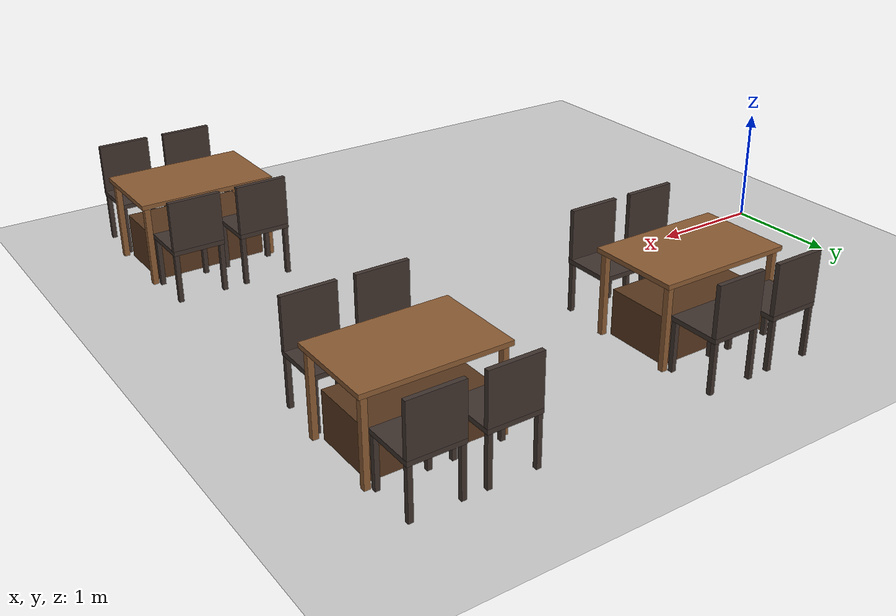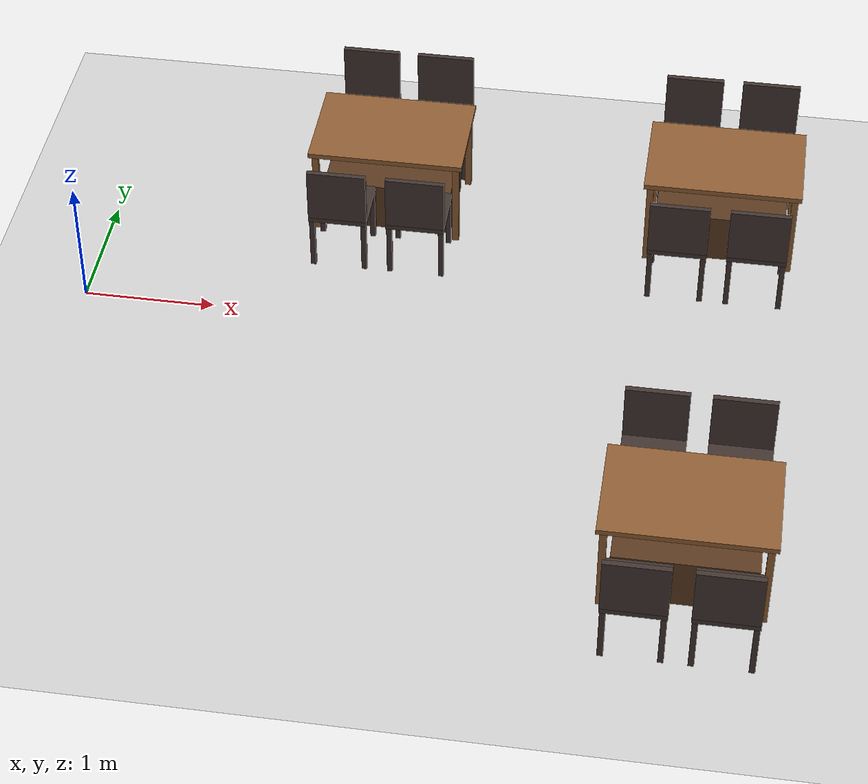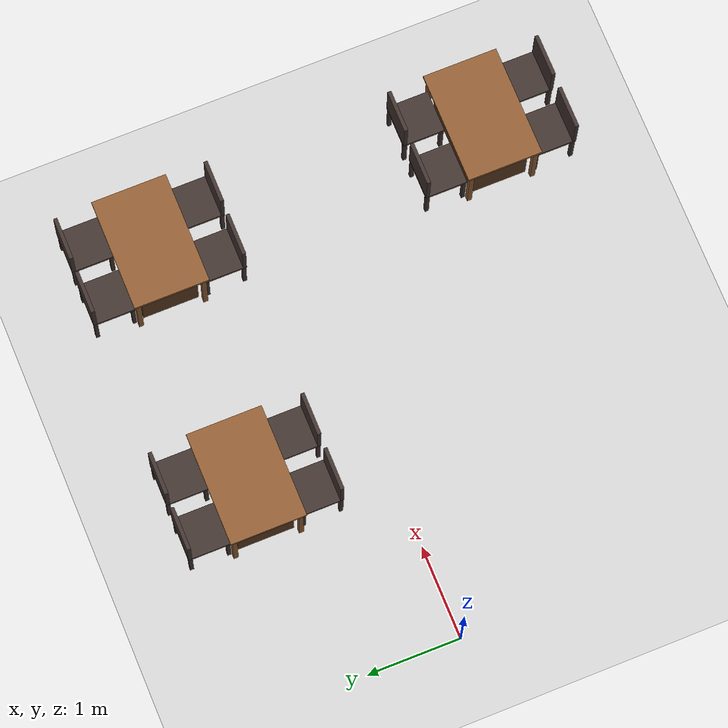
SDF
<sdf version="1.6">
 <world name="restaurant">
  <model name="ground_plane">
   <static>1</static>
   <link name="link">
    <collision name="collision">
     <geometry><plane><normal>0 0 1</normal><size>100 100</size></plane></geometry>
     <surface><friction><ode><mu>100</mu><mu2>50</mu2></ode></friction></surface>
    </collision>
    <visual name="visual">
     <cast_shadows>0</cast_shadows>
     <geometry><plane><normal>0 0 1</normal><size>100 100</size></plane></geometry>
     <material>
      <script><uri>file://media/materials/scripts/gazebo.material</uri><name>Gazebo/Grey</name></script>
     </material>
    </visual>
   </link>
  </model>
  <model name="table_4">
   <static>true</static>
   <pose>2.1640 1.4091 0 0 0 0</pose>
   <link name="link">
    <collision name="base_collision">
     <pose>0.0000 0.0000 0.2000 0 0 0</pose>
     <geometry><box><size>1.0000 0.6000 0.4000</size></box></geometry>
    </collision>
    <visual name="base_visual">
     <pose>0.0000 0.0000 0.2000 0 0 0</pose>
     <geometry><box><size>1.0000 0.6000 0.4000</size></box></geometry>
     <material>
      <ambient>0.35 0.22 0.12 1</ambient>
      <diffuse>0.35 0.22 0.12 1</diffuse>
      <specular>0.05 0.05 0.05 1</specular>
     </material>
    </visual>
    <collision name="top_collision">
     <pose>0.0000 0.0000 0.7300 0 0 0</pose>
     <geometry><box><size>1.2000 0.8000 0.0400</size></box></geometry>
    </collision>
    <visual name="top_visual">
     <pose>0.0000 0.0000 0.7300 0 0 0</pose>
     <geometry><box><size>1.2000 0.8000 0.0400</size></box></geometry>
     <material>
      <ambient>0.55 0.36 0.2 1</ambient>
      <diffuse>0.55 0.36 0.2 1</diffuse>
      <specular>0.05 0.05 0.05 1</specular>
     </material>
    </visual>
    <collision name="leg0_collision">
     <pose>0.5500 0.3500 0.3550 0 0 0</pose>
     <geometry><box><size>0.0500 0.0500 0.7100</size></box></geometry>
    </collision>
    <visual name="leg0_visual">
     <pose>0.5500 0.3500 0.3550 0 0 0</pose>
     <geometry><box><size>0.0500 0.0500 0.7100</size></box></geometry>
     <material>
      <ambient>0.55 0.36 0.2 1</ambient>
      <diffuse>0.55 0.36 0.2 1</diffuse>
      <specular>0.05 0.05 0.05 1</specular>
     </material>
    </visual>
    <collision name="leg1_collision">
     <pose>0.5500 -0.3500 0.3550 0 0 0</pose>
     <geometry><box><size>0.0500 0.0500 0.7100</size></box></geometry>
    </collision>
    <visual name="leg1_visual">
     <pose>0.5500 -0.3500 0.3550 0 0 0</pose>
     <geometry><box><size>0.0500 0.0500 0.7100</size></box></geometry>
     <material>
      <ambient>0.55 0.36 0.2 1</ambient>
      <diffuse>0.55 0.36 0.2 1</diffuse>
      <specular>0.05 0.05 0.05 1</specular>
     </material>
    </visual>
    <collision name="leg2_collision">
     <pose>-0.5500 0.3500 0.3550 0 0 0</pose>
     <geometry><box><size>0.0500 0.0500 0.7100</size></box></geometry>
    </collision>
    <visual name="leg2_visual">
     <pose>-0.5500 0.3500 0.3550 0 0 0</pose>
     <geometry><box><size>0.0500 0.0500 0.7100</size></box></geometry>
     <material>
      <ambient>0.55 0.36 0.2 1</ambient>
      <diffuse>0.55 0.36 0.2 1</diffuse>
      <specular>0.05 0.05 0.05 1</specular>
     </material>
    </visual>
    <collision name="leg3_collision">
     <pose>-0.5500 -0.3500 0.3550 0 0 0</pose>
     <geometry><box><size>0.0500 0.0500 0.7100</size></box></geometry>
    </collision>
    <visual name="leg3_visual">
     <pose>-0.5500 -0.3500 0.3550 0 0 0</pose>
     <geometry><box><size>0.0500 0.0500 0.7100</size></box></geometry>
     <material>
      <ambient>0.55 0.36 0.2 1</ambient>
      <diffuse>0.55 0.36 0.2 1</diffuse>
      <specular>0.05 0.05 0.05 1</specular>
     </material>
    </visual>
    <collision name="chair0_seat_collision">
     <pose>-0.3000 0.6000 0.4500 0 0 0</pose>
     <geometry><box><size>0.4500 0.4500 0.0400</size></box></geometry>
    </collision>
    <visual name="chair0_seat_visual">
     <pose>-0.3000 0.6000 0.4500 0 0 0</pose>
     <geometry><box><size>0.4500 0.4500 0.0400</size></box></geometry>
     <material>
      <ambient>0.25 0.2 0.18 1</ambient>
      <diffuse>0.25 0.2 0.18 1</diffuse>
      <specular>0.05 0.05 0.05 1</specular>
     </material>
    </visual>
    <collision name="chair0_leg0_collision">
     <pose>-0.1000 0.8000 0.2150 0 0 0</pose>
     <geometry><box><size>0.0400 0.0400 0.4300</size></box></geometry>
    </collision>
    <visual name="chair0_leg0_visual">
     <pose>-0.1000 0.8000 0.2150 0 0 0</pose>
     <geometry><box><size>0.0400 0.0400 0.4300</size></box></geometry>
     <material>
      <ambient>0.25 0.2 0.18 1</ambient>
      <diffuse>0.25 0.2 0.18 1</diffuse>
      <specular>0.05 0.05 0.05 1</specular>
     </material>
    </visual>
    <collision name="chair0_leg1_collision">
     <pose>-0.1000 0.4000 0.2150 0 0 0</pose>
     <geometry><box><size>0.0400 0.0400 0.4300</size></box></geometry>
    </collision>
    <visual name="chair0_leg1_visual">
     <pose>-0.1000 0.4000 0.2150 0 0 0</pose>
     <geometry><box><size>0.0400 0.0400 0.4300</size></box></geometry>
     <material>
      <ambient>0.25 0.2 0.18 1</ambient>
      <diffuse>0.25 0.2 0.18 1</diffuse>
      <specular>0.05 0.05 0.05 1</specular>
     </material>
    </visual>
    <collision name="chair0_leg2_collision">
     <pose>-0.5000 0.8000 0.2150 0 0 0</pose>
     <geometry><box><size>0.0400 0.0400 0.4300</size></box></geometry>
    </collision>
    <visual name="chair0_leg2_visual">
     <pose>-0.5000 0.8000 0.2150 0 0 0</pose>
     <geometry><box><size>0.0400 0.0400 0.4300</size></box></geometry>
     <material>
      <ambient>0.25 0.2 0.18 1</ambient>
      <diffuse>0.25 0.2 0.18 1</diffuse>
      <specular>0.05 0.05 0.05 1</specular>
     </material>
    </visual>
    <collision name="chair0_leg3_collision">
     <pose>-0.5000 0.4000 0.2150 0 0 0</pose>
     <geometry><box><size>0.0400 0.0400 0.4300</size></box></geometry>
    </collision>
    <visual name="chair0_leg3_visual">
     <pose>-0.5000 0.4000 0.2150 0 0 0</pose>
     <geometry><box><size>0.0400 0.0400 0.4300</size></box></geometry>
     <material>
      <ambient>0.25 0.2 0.18 1</ambient>
      <diffuse>0.25 0.2 0.18 1</diffuse>
      <specular>0.05 0.05 0.05 1</specular>
     </material>
    </visual>
    <collision name="chair0_back_collision">
     <pose>-0.3000 0.8050 0.6850 0 0 0</pose>
     <geometry><box><size>0.4500 0.0400 0.4300</size></box></geometry>
    </collision>
    <visual name="chair0_back_visual">
     <pose>-0.3000 0.8050 0.6850 0 0 0</pose>
     <geometry><box><size>0.4500 0.0400 0.4300</size></box></geometry>
     <material>
      <ambient>0.25 0.2 0.18 1</ambient>
      <diffuse>0.25 0.2 0.18 1</diffuse>
      <specular>0.05 0.05 0.05 1</specular>
     </material>
    </visual>
    <collision name="chair1_seat_collision">
     <pose>-0.3000 -0.6000 0.4500 0 0 0</pose>
     <geometry><box><size>0.4500 0.4500 0.0400</size></box></geometry>
    </collision>
    <visual name="chair1_seat_visual">
     <pose>-0.3000 -0.6000 0.4500 0 0 0</pose>
     <geometry><box><size>0.4500 0.4500 0.0400</size></box></geometry>
     <material>
      <ambient>0.25 0.2 0.18 1</ambient>
      <diffuse>0.25 0.2 0.18 1</diffuse>
      <specular>0.05 0.05 0.05 1</specular>
     </material>
    </visual>
    <collision name="chair1_leg0_collision">
     <pose>-0.1000 -0.4000 0.2150 0 0 0</pose>
     <geometry><box><size>0.0400 0.0400 0.4300</size></box></geometry>
    </collision>
    <visual name="chair1_leg0_visual">
     <pose>-0.1000 -0.4000 0.2150 0 0 0</pose>
     <geometry><box><size>0.0400 0.0400 0.4300</size></box></geometry>
     <material>
      <ambient>0.25 0.2 0.18 1</ambient>
      <diffuse>0.25 0.2 0.18 1</diffuse>
      <specular>0.05 0.05 0.05 1</specular>
     </material>
    </visual>
    <collision name="chair1_leg1_collision">
     <pose>-0.1000 -0.8000 0.2150 0 0 0</pose>
     <geometry><box><size>0.0400 0.0400 0.4300</size></box></geometry>
    </collision>
    <visual name="chair1_leg1_visual">
     <pose>-0.1000 -0.8000 0.2150 0 0 0</pose>
     <geometry><box><size>0.0400 0.0400 0.4300</size></box></geometry>
     <material>
      <ambient>0.25 0.2 0.18 1</ambient>
      <diffuse>0.25 0.2 0.18 1</diffuse>
      <specular>0.05 0.05 0.05 1</specular>
     </material>
    </visual>
    <collision name="chair1_leg2_collision">
     <pose>-0.5000 -0.4000 0.2150 0 0 0</pose>
     <geometry><box><size>0.0400 0.0400 0.4300</size></box></geometry>
    </collision>
    <visual name="chair1_leg2_visual">
     <pose>-0.5000 -0.4000 0.2150 0 0 0</pose>
     <geometry><box><size>0.0400 0.0400 0.4300</size></box></geometry>
     <material>
      <ambient>0.25 0.2 0.18 1</ambient>
      <diffuse>0.25 0.2 0.18 1</diffuse>
      <specular>0.05 0.05 0.05 1</specular>
     </material>
    </visual>
    <collision name="chair1_leg3_collision">
     <pose>-0.5000 -0.8000 0.2150 0 0 0</pose>
     <geometry><box><size>0.0400 0.0400 0.4300</size></box></geometry>
    </collision>
    <visual name="chair1_leg3_visual">
     <pose>-0.5000 -0.8000 0.2150 0 0 0</pose>
     <geometry><box><size>0.0400 0.0400 0.4300</size></box></geometry>
     <material>
      <ambient>0.25 0.2 0.18 1</ambient>
      <diffuse>0.25 0.2 0.18 1</diffuse>
      <specular>0.05 0.05 0.05 1</specular>
     </material>
    </visual>
    <collision name="chair1_back_collision">
     <pose>-0.3000 -0.8050 0.6850 0 0 0</pose>
     <geometry><box><size>0.4500 0.0400 0.4300</size></box></geometry>
    </collision>
    <visual name="chair1_back_visual">
     <pose>-0.3000 -0.8050 0.6850 0 0 0</pose>
     <geometry><box><size>0.4500 0.0400 0.4300</size></box></geometry>
     <material>
      <ambient>0.25 0.2 0.18 1</ambient>
      <diffuse>0.25 0.2 0.18 1</diffuse>
      <specular>0.05 0.05 0.05 1</specular>
     </material>
    </visual>
    <collision name="chair2_seat_collision">
     <pose>0.3000 0.6000 0.4500 0 0 0</pose>
     <geometry><box><size>0.4500 0.4500 0.0400</size></box></geometry>
    </collision>
    <visual name="chair2_seat_visual">
     <pose>0.3000 0.6000 0.4500 0 0 0</pose>
     <geometry><box><size>0.4500 0.4500 0.0400</size></box></geometry>
     <material>
      <ambient>0.25 0.2 0.18 1</ambient>
      <diffuse>0.25 0.2 0.18 1</diffuse>
      <specular>0.05 0.05 0.05 1</specular>
     </material>
    </visual>
    <collision name="chair2_leg0_collision">
     <pose>0.5000 0.8000 0.2150 0 0 0</pose>
     <geometry><box><size>0.0400 0.0400 0.4300</size></box></geometry>
    </collision>
    <visual name="chair2_leg0_visual">
     <pose>0.5000 0.8000 0.2150 0 0 0</pose>
     <geometry><box><size>0.0400 0.0400 0.4300</size></box></geometry>
     <material>
      <ambient>0.25 0.2 0.18 1</ambient>
      <diffuse>0.25 0.2 0.18 1</diffuse>
      <specular>0.05 0.05 0.05 1</specular>
     </material>
    </visual>
    <collision name="chair2_leg1_collision">
     <pose>0.5000 0.4000 0.2150 0 0 0</pose>
     <geometry><box><size>0.0400 0.0400 0.4300</size></box></geometry>
    </collision>
    <visual name="chair2_leg1_visual">
     <pose>0.5000 0.4000 0.2150 0 0 0</pose>
     <geometry><box><size>0.0400 0.0400 0.4300</size></box></geometry>
     <material>
      <ambient>0.25 0.2 0.18 1</ambient>
      <diffuse>0.25 0.2 0.18 1</diffuse>
      <specular>0.05 0.05 0.05 1</specular>
     </material>
    </visual>
    <collision name="chair2_leg2_collision">
     <pose>0.1000 0.8000 0.2150 0 0 0</pose>
     <geometry><box><size>0.0400 0.0400 0.4300</size></box></geometry>
    </collision>
    <visual name="chair2_leg2_visual">
     <pose>0.1000 0.8000 0.2150 0 0 0</pose>
     <geometry><box><size>0.0400 0.0400 0.4300</size></box></geometry>
     <material>
      <ambient>0.25 0.2 0.18 1</ambient>
      <diffuse>0.25 0.2 0.18 1</diffuse>
      <specular>0.05 0.05 0.05 1</specular>
     </material>
    </visual>
    <collision name="chair2_leg3_collision">
     <pose>0.1000 0.4000 0.2150 0 0 0</pose>
     <geometry><box><size>0.0400 0.0400 0.4300</size></box></geometry>
    </collision>
    <visual name="chair2_leg3_visual">
     <pose>0.1000 0.4000 0.2150 0 0 0</pose>
     <geometry><box><size>0.0400 0.0400 0.4300</size></box></geometry>
     <material>
      <ambient>0.25 0.2 0.18 1</ambient>
      <diffuse>0.25 0.2 0.18 1</diffuse>
      <specular>0.05 0.05 0.05 1</specular>
     </material>
    </visual>
    <collision name="chair2_back_collision">
     <pose>0.3000 0.8050 0.6850 0 0 0</pose>
     <geometry><box><size>0.4500 0.0400 0.4300</size></box></geometry>
    </collision>
    <visual name="chair2_back_visual">
     <pose>0.3000 0.8050 0.6850 0 0 0</pose>
     <geometry><box><size>0.4500 0.0400 0.4300</size></box></geometry>
     <material>
      <ambient>0.25 0.2 0.18 1</ambient>
      <diffuse>0.25 0.2 0.18 1</diffuse>
      <specular>0.05 0.05 0.05 1</specular>
     </material>
    </visual>
    <collision name="chair3_seat_collision">
     <pose>0.3000 -0.6000 0.4500 0 0 0</pose>
     <geometry><box><size>0.4500 0.4500 0.0400</size></box></geometry>
    </collision>
    <visual name="chair3_seat_visual">
     <pose>0.3000 -0.6000 0.4500 0 0 0</pose>
     <geometry><box><size>0.4500 0.4500 0.0400</size></box></geometry>
     <material>
      <ambient>0.25 0.2 0.18 1</ambient>
      <diffuse>0.25 0.2 0.18 1</diffuse>
      <specular>0.05 0.05 0.05 1</specular>
     </material>
    </visual>
    <collision name="chair3_leg0_collision">
     <pose>0.5000 -0.4000 0.2150 0 0 0</pose>
     <geometry><box><size>0.0400 0.0400 0.4300</size></box></geometry>
    </collision>
    <visual name="chair3_leg0_visual">
     <pose>0.5000 -0.4000 0.2150 0 0 0</pose>
     <geometry><box><size>0.0400 0.0400 0.4300</size></box></geometry>
     <material>
      <ambient>0.25 0.2 0.18 1</ambient>
      <diffuse>0.25 0.2 0.18 1</diffuse>
      <specular>0.05 0.05 0.05 1</specular>
     </material>
    </visual>
    <collision name="chair3_leg1_collision">
     <pose>0.5000 -0.8000 0.2150 0 0 0</pose>
     <geometry><box><size>0.0400 0.0400 0.4300</size></box></geometry>
    </collision>
    <visual name="chair3_leg1_visual">
     <pose>0.5000 -0.8000 0.2150 0 0 0</pose>
     <geometry><box><size>0.0400 0.0400 0.4300</size></box></geometry>
     <material>
      <ambient>0.25 0.2 0.18 1</ambient>
      <diffuse>0.25 0.2 0.18 1</diffuse>
      <specular>0.05 0.05 0.05 1</specular>
     </material>
    </visual>
    <collision name="chair3_leg2_collision">
     <pose>0.1000 -0.4000 0.2150 0 0 0</pose>
     <geometry><box><size>0.0400 0.0400 0.4300</size></box></geometry>
    </collision>
    <visual name="chair3_leg2_visual">
     <pose>0.1000 -0.4000 0.2150 0 0 0</pose>
     <geometry><box><size>0.0400 0.0400 0.4300</size></box></geometry>
     <material>
      <ambient>0.25 0.2 0.18 1</ambient>
      <diffuse>0.25 0.2 0.18 1</diffuse>
      <specular>0.05 0.05 0.05 1</specular>
     </material>
    </visual>
    <collision name="chair3_leg3_collision">
     <pose>0.1000 -0.8000 0.2150 0 0 0</pose>
     <geometry><box><size>0.0400 0.0400 0.4300</size></box></geometry>
    </collision>
    <visual name="chair3_leg3_visual">
     <pose>0.1000 -0.8000 0.2150 0 0 0</pose>
     <geometry><box><size>0.0400 0.0400 0.4300</size></box></geometry>
     <material>
      <ambient>0.25 0.2 0.18 1</ambient>
      <diffuse>0.25 0.2 0.18 1</diffuse>
      <specular>0.05 0.05 0.05 1</specular>
     </material>
    </visual>
    <collision name="chair3_back_collision">
     <pose>0.3000 -0.8050 0.6850 0 0 0</pose>
     <geometry><box><size>0.4500 0.0400 0.4300</size></box></geometry>
    </collision>
    <visual name="chair3_back_visual">
     <pose>0.3000 -0.8050 0.6850 0 0 0</pose>
     <geometry><box><size>0.4500 0.0400 0.4300</size></box></geometry>
     <material>
      <ambient>0.25 0.2 0.18 1</ambient>
      <diffuse>0.25 0.2 0.18 1</diffuse>
      <specular>0.05 0.05 0.05 1</specular>
     </material>
    </visual>
   </link>
  </model>
  <model name="table_5">
   <static>true</static>
   <pose>4.7640 1.4091 0 0 0 0</pose>
   <link name="link">
    <collision name="base_collision">
     <pose>0.0000 0.0000 0.2000 0 0 0</pose>
     <geometry><box><size>1.0000 0.6000 0.4000</size></box></geometry>
    </collision>
    <visual name="base_visual">
     <pose>0.0000 0.0000 0.2000 0 0 0</pose>
     <geometry><box><size>1.0000 0.6000 0.4000</size></box></geometry>
     <material>
      <ambient>0.35 0.22 0.12 1</ambient>
      <diffuse>0.35 0.22 0.12 1</diffuse>
      <specular>0.05 0.05 0.05 1</specular>
     </material>
    </visual>
    <collision name="top_collision">
     <pose>0.0000 0.0000 0.7300 0 0 0</pose>
     <geometry><box><size>1.2000 0.8000 0.0400</size></box></geometry>
    </collision>
    <visual name="top_visual">
     <pose>0.0000 0.0000 0.7300 0 0 0</pose>
     <geometry><box><size>1.2000 0.8000 0.0400</size></box></geometry>
     <material>
      <ambient>0.55 0.36 0.2 1</ambient>
      <diffuse>0.55 0.36 0.2 1</diffuse>
      <specular>0.05 0.05 0.05 1</specular>
     </material>
    </visual>
    <collision name="leg0_collision">
     <pose>0.5500 0.3500 0.3550 0 0 0</pose>
     <geometry><box><size>0.0500 0.0500 0.7100</size></box></geometry>
    </collision>
    <visual name="leg0_visual">
     <pose>0.5500 0.3500 0.3550 0 0 0</pose>
     <geometry><box><size>0.0500 0.0500 0.7100</size></box></geometry>
     <material>
      <ambient>0.55 0.36 0.2 1</ambient>
      <diffuse>0.55 0.36 0.2 1</diffuse>
      <specular>0.05 0.05 0.05 1</specular>
     </material>
    </visual>
    <collision name="leg1_collision">
     <pose>0.5500 -0.3500 0.3550 0 0 0</pose>
     <geometry><box><size>0.0500 0.0500 0.7100</size></box></geometry>
    </collision>
    <visual name="leg1_visual">
     <pose>0.5500 -0.3500 0.3550 0 0 0</pose>
     <geometry><box><size>0.0500 0.0500 0.7100</size></box></geometry>
     <material>
      <ambient>0.55 0.36 0.2 1</ambient>
      <diffuse>0.55 0.36 0.2 1</diffuse>
      <specular>0.05 0.05 0.05 1</specular>
     </material>
    </visual>
    <collision name="leg2_collision">
     <pose>-0.5500 0.3500 0.3550 0 0 0</pose>
     <geometry><box><size>0.0500 0.0500 0.7100</size></box></geometry>
    </collision>
    <visual name="leg2_visual">
     <pose>-0.5500 0.3500 0.3550 0 0 0</pose>
     <geometry><box><size>0.0500 0.0500 0.7100</size></box></geometry>
     <material>
      <ambient>0.55 0.36 0.2 1</ambient>
      <diffuse>0.55 0.36 0.2 1</diffuse>
      <specular>0.05 0.05 0.05 1</specular>
     </material>
    </visual>
    <collision name="leg3_collision">
     <pose>-0.5500 -0.3500 0.3550 0 0 0</pose>
     <geometry><box><size>0.0500 0.0500 0.7100</size></box></geometry>
    </collision>
    <visual name="leg3_visual">
     <pose>-0.5500 -0.3500 0.3550 0 0 0</pose>
     <geometry><box><size>0.0500 0.0500 0.7100</size></box></geometry>
     <material>
      <ambient>0.55 0.36 0.2 1</ambient>
      <diffuse>0.55 0.36 0.2 1</diffuse>
      <specular>0.05 0.05 0.05 1</specular>
     </material>
    </visual>
    <collision name="chair0_seat_collision">
     <pose>-0.3000 0.6000 0.4500 0 0 0</pose>
     <geometry><box><size>0.4500 0.4500 0.0400</size></box></geometry>
    </collision>
    <visual name="chair0_seat_visual">
     <pose>-0.3000 0.6000 0.4500 0 0 0</pose>
     <geometry><box><size>0.4500 0.4500 0.0400</size></box></geometry>
     <material>
      <ambient>0.25 0.2 0.18 1</ambient>
      <diffuse>0.25 0.2 0.18 1</diffuse>
      <specular>0.05 0.05 0.05 1</specular>
     </material>
    </visual>
    <collision name="chair0_leg0_collision">
     <pose>-0.1000 0.8000 0.2150 0 0 0</pose>
     <geometry><box><size>0.0400 0.0400 0.4300</size></box></geometry>
    </collision>
    <visual name="chair0_leg0_visual">
     <pose>-0.1000 0.8000 0.2150 0 0 0</pose>
     <geometry><box><size>0.0400 0.0400 0.4300</size></box></geometry>
     <material>
      <ambient>0.25 0.2 0.18 1</ambient>
      <diffuse>0.25 0.2 0.18 1</diffuse>
      <specular>0.05 0.05 0.05 1</specular>
     </material>
    </visual>
    <collision name="chair0_leg1_collision">
     <pose>-0.1000 0.4000 0.2150 0 0 0</pose>
     <geometry><box><size>0.0400 0.0400 0.4300</size></box></geometry>
    </collision>
    <visual name="chair0_leg1_visual">
     <pose>-0.1000 0.4000 0.2150 0 0 0</pose>
     <geometry><box><size>0.0400 0.0400 0.4300</size></box></geometry>
     <material>
      <ambient>0.25 0.2 0.18 1</ambient>
      <diffuse>0.25 0.2 0.18 1</diffuse>
      <specular>0.05 0.05 0.05 1</specular>
     </material>
    </visual>
    <collision name="chair0_leg2_collision">
     <pose>-0.5000 0.8000 0.2150 0 0 0</pose>
     <geometry><box><size>0.0400 0.0400 0.4300</size></box></geometry>
    </collision>
    <visual name="chair0_leg2_visual">
     <pose>-0.5000 0.8000 0.2150 0 0 0</pose>
     <geometry><box><size>0.0400 0.0400 0.4300</size></box></geometry>
     <material>
      <ambient>0.25 0.2 0.18 1</ambient>
      <diffuse>0.25 0.2 0.18 1</diffuse>
      <specular>0.05 0.05 0.05 1</specular>
     </material>
    </visual>
    <collision name="chair0_leg3_collision">
     <pose>-0.5000 0.4000 0.2150 0 0 0</pose>
     <geometry><box><size>0.0400 0.0400 0.4300</size></box></geometry>
    </collision>
    <visual name="chair0_leg3_visual">
     <pose>-0.5000 0.4000 0.2150 0 0 0</pose>
     <geometry><box><size>0.0400 0.0400 0.4300</size></box></geometry>
     <material>
      <ambient>0.25 0.2 0.18 1</ambient>
      <diffuse>0.25 0.2 0.18 1</diffuse>
      <specular>0.05 0.05 0.05 1</specular>
     </material>
    </visual>
    <collision name="chair0_back_collision">
     <pose>-0.3000 0.8050 0.6850 0 0 0</pose>
     <geometry><box><size>0.4500 0.0400 0.4300</size></box></geometry>
    </collision>
    <visual name="chair0_back_visual">
     <pose>-0.3000 0.8050 0.6850 0 0 0</pose>
     <geometry><box><size>0.4500 0.0400 0.4300</size></box></geometry>
     <material>
      <ambient>0.25 0.2 0.18 1</ambient>
      <diffuse>0.25 0.2 0.18 1</diffuse>
      <specular>0.05 0.05 0.05 1</specular>
     </material>
    </visual>
    <collision name="chair1_seat_collision">
     <pose>-0.3000 -0.6000 0.4500 0 0 0</pose>
     <geometry><box><size>0.4500 0.4500 0.0400</size></box></geometry>
    </collision>
    <visual name="chair1_seat_visual">
     <pose>-0.3000 -0.6000 0.4500 0 0 0</pose>
     <geometry><box><size>0.4500 0.4500 0.0400</size></box></geometry>
     <material>
      <ambient>0.25 0.2 0.18 1</ambient>
      <diffuse>0.25 0.2 0.18 1</diffuse>
      <specular>0.05 0.05 0.05 1</specular>
     </material>
    </visual>
    <collision name="chair1_leg0_collision">
     <pose>-0.1000 -0.4000 0.2150 0 0 0</pose>
     <geometry><box><size>0.0400 0.0400 0.4300</size></box></geometry>
    </collision>
    <visual name="chair1_leg0_visual">
     <pose>-0.1000 -0.4000 0.2150 0 0 0</pose>
     <geometry><box><size>0.0400 0.0400 0.4300</size></box></geometry>
     <material>
      <ambient>0.25 0.2 0.18 1</ambient>
      <diffuse>0.25 0.2 0.18 1</diffuse>
      <specular>0.05 0.05 0.05 1</specular>
     </material>
    </visual>
    <collision name="chair1_leg1_collision">
     <pose>-0.1000 -0.8000 0.2150 0 0 0</pose>
     <geometry><box><size>0.0400 0.0400 0.4300</size></box></geometry>
    </collision>
    <visual name="chair1_leg1_visual">
     <pose>-0.1000 -0.8000 0.2150 0 0 0</pose>
     <geometry><box><size>0.0400 0.0400 0.4300</size></box></geometry>
     <material>
      <ambient>0.25 0.2 0.18 1</ambient>
      <diffuse>0.25 0.2 0.18 1</diffuse>
      <specular>0.05 0.05 0.05 1</specular>
     </material>
    </visual>
    <collision name="chair1_leg2_collision">
     <pose>-0.5000 -0.4000 0.2150 0 0 0</pose>
     <geometry><box><size>0.0400 0.0400 0.4300</size></box></geometry>
    </collision>
    <visual name="chair1_leg2_visual">
     <pose>-0.5000 -0.4000 0.2150 0 0 0</pose>
     <geometry><box><size>0.0400 0.0400 0.4300</size></box></geometry>
     <material>
      <ambient>0.25 0.2 0.18 1</ambient>
      <diffuse>0.25 0.2 0.18 1</diffuse>
      <specular>0.05 0.05 0.05 1</specular>
     </material>
    </visual>
    <collision name="chair1_leg3_collision">
     <pose>-0.5000 -0.8000 0.2150 0 0 0</pose>
     <geometry><box><size>0.0400 0.0400 0.4300</size></box></geometry>
    </collision>
    <visual name="chair1_leg3_visual">
     <pose>-0.5000 -0.8000 0.2150 0 0 0</pose>
     <geometry><box><size>0.0400 0.0400 0.4300</size></box></geometry>
     <material>
      <ambient>0.25 0.2 0.18 1</ambient>
      <diffuse>0.25 0.2 0.18 1</diffuse>
      <specular>0.05 0.05 0.05 1</specular>
     </material>
    </visual>
    <collision name="chair1_back_collision">
     <pose>-0.3000 -0.8050 0.6850 0 0 0</pose>
     <geometry><box><size>0.4500 0.0400 0.4300</size></box></geometry>
    </collision>
    <visual name="chair1_back_visual">
     <pose>-0.3000 -0.8050 0.6850 0 0 0</pose>
     <geometry><box><size>0.4500 0.0400 0.4300</size></box></geometry>
     <material>
      <ambient>0.25 0.2 0.18 1</ambient>
      <diffuse>0.25 0.2 0.18 1</diffuse>
      <specular>0.05 0.05 0.05 1</specular>
     </material>
    </visual>
    <collision name="chair2_seat_collision">
     <pose>0.3000 0.6000 0.4500 0 0 0</pose>
     <geometry><box><size>0.4500 0.4500 0.0400</size></box></geometry>
    </collision>
    <visual name="chair2_seat_visual">
     <pose>0.3000 0.6000 0.4500 0 0 0</pose>
     <geometry><box><size>0.4500 0.4500 0.0400</size></box></geometry>
     <material>
      <ambient>0.25 0.2 0.18 1</ambient>
      <diffuse>0.25 0.2 0.18 1</diffuse>
      <specular>0.05 0.05 0.05 1</specular>
     </material>
    </visual>
    <collision name="chair2_leg0_collision">
     <pose>0.5000 0.8000 0.2150 0 0 0</pose>
     <geometry><box><size>0.0400 0.0400 0.4300</size></box></geometry>
    </collision>
    <visual name="chair2_leg0_visual">
     <pose>0.5000 0.8000 0.2150 0 0 0</pose>
     <geometry><box><size>0.0400 0.0400 0.4300</size></box></geometry>
     <material>
      <ambient>0.25 0.2 0.18 1</ambient>
      <diffuse>0.25 0.2 0.18 1</diffuse>
      <specular>0.05 0.05 0.05 1</specular>
     </material>
    </visual>
    <collision name="chair2_leg1_collision">
     <pose>0.5000 0.4000 0.2150 0 0 0</pose>
     <geometry><box><size>0.0400 0.0400 0.4300</size></box></geometry>
    </collision>
    <visual name="chair2_leg1_visual">
     <pose>0.5000 0.4000 0.2150 0 0 0</pose>
     <geometry><box><size>0.0400 0.0400 0.4300</size></box></geometry>
     <material>
      <ambient>0.25 0.2 0.18 1</ambient>
      <diffuse>0.25 0.2 0.18 1</diffuse>
      <specular>0.05 0.05 0.05 1</specular>
     </material>
    </visual>
    <collision name="chair2_leg2_collision">
     <pose>0.1000 0.8000 0.2150 0 0 0</pose>
     <geometry><box><size>0.0400 0.0400 0.4300</size></box></geometry>
    </collision>
    <visual name="chair2_leg2_visual">
     <pose>0.1000 0.8000 0.2150 0 0 0</pose>
     <geometry><box><size>0.0400 0.0400 0.4300</size></box></geometry>
     <material>
      <ambient>0.25 0.2 0.18 1</ambient>
      <diffuse>0.25 0.2 0.18 1</diffuse>
      <specular>0.05 0.05 0.05 1</specular>
     </material>
    </visual>
    <collision name="chair2_leg3_collision">
     <pose>0.1000 0.4000 0.2150 0 0 0</pose>
     <geometry><box><size>0.0400 0.0400 0.4300</size></box></geometry>
    </collision>
    <visual name="chair2_leg3_visual">
     <pose>0.1000 0.4000 0.2150 0 0 0</pose>
     <geometry><box><size>0.0400 0.0400 0.4300</size></box></geometry>
     <material>
      <ambient>0.25 0.2 0.18 1</ambient>
      <diffuse>0.25 0.2 0.18 1</diffuse>
      <specular>0.05 0.05 0.05 1</specular>
     </material>
    </visual>
    <collision name="chair2_back_collision">
     <pose>0.3000 0.8050 0.6850 0 0 0</pose>
     <geometry><box><size>0.4500 0.0400 0.4300</size></box></geometry>
    </collision>
    <visual name="chair2_back_visual">
     <pose>0.3000 0.8050 0.6850 0 0 0</pose>
     <geometry><box><size>0.4500 0.0400 0.4300</size></box></geometry>
     <material>
      <ambient>0.25 0.2 0.18 1</ambient>
      <diffuse>0.25 0.2 0.18 1</diffuse>
      <specular>0.05 0.05 0.05 1</specular>
     </material>
    </visual>
    <collision name="chair3_seat_collision">
     <pose>0.3000 -0.6000 0.4500 0 0 0</pose>
     <geometry><box><size>0.4500 0.4500 0.0400</size></box></geometry>
    </collision>
    <visual name="chair3_seat_visual">
     <pose>0.3000 -0.6000 0.4500 0 0 0</pose>
     <geometry><box><size>0.4500 0.4500 0.0400</size></box></geometry>
     <material>
      <ambient>0.25 0.2 0.18 1</ambient>
      <diffuse>0.25 0.2 0.18 1</diffuse>
      <specular>0.05 0.05 0.05 1</specular>
     </material>
    </visual>
    <collision name="chair3_leg0_collision">
     <pose>0.5000 -0.4000 0.2150 0 0 0</pose>
     <geometry><box><size>0.0400 0.0400 0.4300</size></box></geometry>
    </collision>
    <visual name="chair3_leg0_visual">
     <pose>0.5000 -0.4000 0.2150 0 0 0</pose>
     <geometry><box><size>0.0400 0.0400 0.4300</size></box></geometry>
     <material>
      <ambient>0.25 0.2 0.18 1</ambient>
      <diffuse>0.25 0.2 0.18 1</diffuse>
      <specular>0.05 0.05 0.05 1</specular>
     </material>
    </visual>
    <collision name="chair3_leg1_collision">
     <pose>0.5000 -0.8000 0.2150 0 0 0</pose>
     <geometry><box><size>0.0400 0.0400 0.4300</size></box></geometry>
    </collision>
    <visual name="chair3_leg1_visual">
     <pose>0.5000 -0.8000 0.2150 0 0 0</pose>
     <geometry><box><size>0.0400 0.0400 0.4300</size></box></geometry>
     <material>
      <ambient>0.25 0.2 0.18 1</ambient>
      <diffuse>0.25 0.2 0.18 1</diffuse>
      <specular>0.05 0.05 0.05 1</specular>
     </material>
    </visual>
    <collision name="chair3_leg2_collision">
     <pose>0.1000 -0.4000 0.2150 0 0 0</pose>
     <geometry><box><size>0.0400 0.0400 0.4300</size></box></geometry>
    </collision>
    <visual name="chair3_leg2_visual">
     <pose>0.1000 -0.4000 0.2150 0 0 0</pose>
     <geometry><box><size>0.0400 0.0400 0.4300</size></box></geometry>
     <material>
      <ambient>0.25 0.2 0.18 1</ambient>
      <diffuse>0.25 0.2 0.18 1</diffuse>
      <specular>0.05 0.05 0.05 1</specular>
     </material>
    </visual>
    <collision name="chair3_leg3_collision">
     <pose>0.1000 -0.8000 0.2150 0 0 0</pose>
     <geometry><box><size>0.0400 0.0400 0.4300</size></box></geometry>
    </collision>
    <visual name="chair3_leg3_visual">
     <pose>0.1000 -0.8000 0.2150 0 0 0</pose>
     <geometry><box><size>0.0400 0.0400 0.4300</size></box></geometry>
     <material>
      <ambient>0.25 0.2 0.18 1</ambient>
      <diffuse>0.25 0.2 0.18 1</diffuse>
      <specular>0.05 0.05 0.05 1</specular>
     </material>
    </visual>
    <collision name="chair3_back_collision">
     <pose>0.3000 -0.8050 0.6850 0 0 0</pose>
     <geometry><box><size>0.4500 0.0400 0.4300</size></box></geometry>
    </collision>
    <visual name="chair3_back_visual">
     <pose>0.3000 -0.8050 0.6850 0 0 0</pose>
     <geometry><box><size>0.4500 0.0400 0.4300</size></box></geometry>
     <material>
      <ambient>0.25 0.2 0.18 1</ambient>
      <diffuse>0.25 0.2 0.18 1</diffuse>
      <specular>0.05 0.05 0.05 1</specular>
     </material>
    </visual>
   </link>
  </model>
  <model name="table_11">
   <static>true</static>
   <pose>4.7640 -2.1909 0 0 0 0</pose>
   <link name="link">
    <collision name="base_collision">
     <pose>0.0000 0.0000 0.2000 0 0 0</pose>
     <geometry><box><size>1.0000 0.6000 0.4000</size></box></geometry>
    </collision>
    <visual name="base_visual">
     <pose>0.0000 0.0000 0.2000 0 0 0</pose>
     <geometry><box><size>1.0000 0.6000 0.4000</size></box></geometry>
     <material>
      <ambient>0.35 0.22 0.12 1</ambient>
      <diffuse>0.35 0.22 0.12 1</diffuse>
      <specular>0.05 0.05 0.05 1</specular>
     </material>
    </visual>
    <collision name="top_collision">
     <pose>0.0000 0.0000 0.7300 0 0 0</pose>
     <geometry><box><size>1.2000 0.8000 0.0400</size></box></geometry>
    </collision>
    <visual name="top_visual">
     <pose>0.0000 0.0000 0.7300 0 0 0</pose>
     <geometry><box><size>1.2000 0.8000 0.0400</size></box></geometry>
     <material>
      <ambient>0.55 0.36 0.2 1</ambient>
      <diffuse>0.55 0.36 0.2 1</diffuse>
      <specular>0.05 0.05 0.05 1</specular>
     </material>
    </visual>
    <collision name="leg0_collision">
     <pose>0.5500 0.3500 0.3550 0 0 0</pose>
     <geometry><box><size>0.0500 0.0500 0.7100</size></box></geometry>
    </collision>
    <visual name="leg0_visual">
     <pose>0.5500 0.3500 0.3550 0 0 0</pose>
     <geometry><box><size>0.0500 0.0500 0.7100</size></box></geometry>
     <material>
      <ambient>0.55 0.36 0.2 1</ambient>
      <diffuse>0.55 0.36 0.2 1</diffuse>
      <specular>0.05 0.05 0.05 1</specular>
     </material>
    </visual>
    <collision name="leg1_collision">
     <pose>0.5500 -0.3500 0.3550 0 0 0</pose>
     <geometry><box><size>0.0500 0.0500 0.7100</size></box></geometry>
    </collision>
    <visual name="leg1_visual">
     <pose>0.5500 -0.3500 0.3550 0 0 0</pose>
     <geometry><box><size>0.0500 0.0500 0.7100</size></box></geometry>
     <material>
      <ambient>0.55 0.36 0.2 1</ambient>
      <diffuse>0.55 0.36 0.2 1</diffuse>
      <specular>0.05 0.05 0.05 1</specular>
     </material>
    </visual>
    <collision name="leg2_collision">
     <pose>-0.5500 0.3500 0.3550 0 0 0</pose>
     <geometry><box><size>0.0500 0.0500 0.7100</size></box></geometry>
    </collision>
    <visual name="leg2_visual">
     <pose>-0.5500 0.3500 0.3550 0 0 0</pose>
     <geometry><box><size>0.0500 0.0500 0.7100</size></box></geometry>
     <material>
      <ambient>0.55 0.36 0.2 1</ambient>
      <diffuse>0.55 0.36 0.2 1</diffuse>
      <specular>0.05 0.05 0.05 1</specular>
     </material>
    </visual>
    <collision name="leg3_collision">
     <pose>-0.5500 -0.3500 0.3550 0 0 0</pose>
     <geometry><box><size>0.0500 0.0500 0.7100</size></box></geometry>
    </collision>
    <visual name="leg3_visual">
     <pose>-0.5500 -0.3500 0.3550 0 0 0</pose>
     <geometry><box><size>0.0500 0.0500 0.7100</size></box></geometry>
     <material>
      <ambient>0.55 0.36 0.2 1</ambient>
      <diffuse>0.55 0.36 0.2 1</diffuse>
      <specular>0.05 0.05 0.05 1</specular>
     </material>
    </visual>
    <collision name="chair0_seat_collision">
     <pose>-0.3000 0.6000 0.4500 0 0 0</pose>
     <geometry><box><size>0.4500 0.4500 0.0400</size></box></geometry>
    </collision>
    <visual name="chair0_seat_visual">
     <pose>-0.3000 0.6000 0.4500 0 0 0</pose>
     <geometry><box><size>0.4500 0.4500 0.0400</size></box></geometry>
     <material>
      <ambient>0.25 0.2 0.18 1</ambient>
      <diffuse>0.25 0.2 0.18 1</diffuse>
      <specular>0.05 0.05 0.05 1</specular>
     </material>
    </visual>
    <collision name="chair0_leg0_collision">
     <pose>-0.1000 0.8000 0.2150 0 0 0</pose>
     <geometry><box><size>0.0400 0.0400 0.4300</size></box></geometry>
    </collision>
    <visual name="chair0_leg0_visual">
     <pose>-0.1000 0.8000 0.2150 0 0 0</pose>
     <geometry><box><size>0.0400 0.0400 0.4300</size></box></geometry>
     <material>
      <ambient>0.25 0.2 0.18 1</ambient>
      <diffuse>0.25 0.2 0.18 1</diffuse>
      <specular>0.05 0.05 0.05 1</specular>
     </material>
    </visual>
    <collision name="chair0_leg1_collision">
     <pose>-0.1000 0.4000 0.2150 0 0 0</pose>
     <geometry><box><size>0.0400 0.0400 0.4300</size></box></geometry>
    </collision>
    <visual name="chair0_leg1_visual">
     <pose>-0.1000 0.4000 0.2150 0 0 0</pose>
     <geometry><box><size>0.0400 0.0400 0.4300</size></box></geometry>
     <material>
      <ambient>0.25 0.2 0.18 1</ambient>
      <diffuse>0.25 0.2 0.18 1</diffuse>
      <specular>0.05 0.05 0.05 1</specular>
     </material>
    </visual>
    <collision name="chair0_leg2_collision">
     <pose>-0.5000 0.8000 0.2150 0 0 0</pose>
     <geometry><box><size>0.0400 0.0400 0.4300</size></box></geometry>
    </collision>
    <visual name="chair0_leg2_visual">
     <pose>-0.5000 0.8000 0.2150 0 0 0</pose>
     <geometry><box><size>0.0400 0.0400 0.4300</size></box></geometry>
     <material>
      <ambient>0.25 0.2 0.18 1</ambient>
      <diffuse>0.25 0.2 0.18 1</diffuse>
      <specular>0.05 0.05 0.05 1</specular>
     </material>
    </visual>
    <collision name="chair0_leg3_collision">
     <pose>-0.5000 0.4000 0.2150 0 0 0</pose>
     <geometry><box><size>0.0400 0.0400 0.4300</size></box></geometry>
    </collision>
    <visual name="chair0_leg3_visual">
     <pose>-0.5000 0.4000 0.2150 0 0 0</pose>
     <geometry><box><size>0.0400 0.0400 0.4300</size></box></geometry>
     <material>
      <ambient>0.25 0.2 0.18 1</ambient>
      <diffuse>0.25 0.2 0.18 1</diffuse>
      <specular>0.05 0.05 0.05 1</specular>
     </material>
    </visual>
    <collision name="chair0_back_collision">
     <pose>-0.3000 0.8050 0.6850 0 0 0</pose>
     <geometry><box><size>0.4500 0.0400 0.4300</size></box></geometry>
    </collision>
    <visual name="chair0_back_visual">
     <pose>-0.3000 0.8050 0.6850 0 0 0</pose>
     <geometry><box><size>0.4500 0.0400 0.4300</size></box></geometry>
     <material>
      <ambient>0.25 0.2 0.18 1</ambient>
      <diffuse>0.25 0.2 0.18 1</diffuse>
      <specular>0.05 0.05 0.05 1</specular>
     </material>
    </visual>
    <collision name="chair1_seat_collision">
     <pose>-0.3000 -0.6000 0.4500 0 0 0</pose>
     <geometry><box><size>0.4500 0.4500 0.0400</size></box></geometry>
    </collision>
    <visual name="chair1_seat_visual">
     <pose>-0.3000 -0.6000 0.4500 0 0 0</pose>
     <geometry><box><size>0.4500 0.4500 0.0400</size></box></geometry>
     <material>
      <ambient>0.25 0.2 0.18 1</ambient>
      <diffuse>0.25 0.2 0.18 1</diffuse>
      <specular>0.05 0.05 0.05 1</specular>
     </material>
    </visual>
    <collision name="chair1_leg0_collision">
     <pose>-0.1000 -0.4000 0.2150 0 0 0</pose>
     <geometry><box><size>0.0400 0.0400 0.4300</size></box></geometry>
    </collision>
    <visual name="chair1_leg0_visual">
     <pose>-0.1000 -0.4000 0.2150 0 0 0</pose>
     <geometry><box><size>0.0400 0.0400 0.4300</size></box></geometry>
     <material>
      <ambient>0.25 0.2 0.18 1</ambient>
      <diffuse>0.25 0.2 0.18 1</diffuse>
      <specular>0.05 0.05 0.05 1</specular>
     </material>
    </visual>
    <collision name="chair1_leg1_collision">
     <pose>-0.1000 -0.8000 0.2150 0 0 0</pose>
     <geometry><box><size>0.0400 0.0400 0.4300</size></box></geometry>
    </collision>
    <visual name="chair1_leg1_visual">
     <pose>-0.1000 -0.8000 0.2150 0 0 0</pose>
     <geometry><box><size>0.0400 0.0400 0.4300</size></box></geometry>
     <material>
      <ambient>0.25 0.2 0.18 1</ambient>
      <diffuse>0.25 0.2 0.18 1</diffuse>
      <specular>0.05 0.05 0.05 1</specular>
     </material>
    </visual>
    <collision name="chair1_leg2_collision">
     <pose>-0.5000 -0.4000 0.2150 0 0 0</pose>
     <geometry><box><size>0.0400 0.0400 0.4300</size></box></geometry>
    </collision>
    <visual name="chair1_leg2_visual">
     <pose>-0.5000 -0.4000 0.2150 0 0 0</pose>
     <geometry><box><size>0.0400 0.0400 0.4300</size></box></geometry>
     <material>
      <ambient>0.25 0.2 0.18 1</ambient>
      <diffuse>0.25 0.2 0.18 1</diffuse>
      <specular>0.05 0.05 0.05 1</specular>
     </material>
    </visual>
    <collision name="chair1_leg3_collision">
     <pose>-0.5000 -0.8000 0.2150 0 0 0</pose>
     <geometry><box><size>0.0400 0.0400 0.4300</size></box></geometry>
    </collision>
    <visual name="chair1_leg3_visual">
     <pose>-0.5000 -0.8000 0.2150 0 0 0</pose>
     <geometry><box><size>0.0400 0.0400 0.4300</size></box></geometry>
     <material>
      <ambient>0.25 0.2 0.18 1</ambient>
      <diffuse>0.25 0.2 0.18 1</diffuse>
      <specular>0.05 0.05 0.05 1</specular>
     </material>
    </visual>
    <collision name="chair1_back_collision">
     <pose>-0.3000 -0.8050 0.6850 0 0 0</pose>
     <geometry><box><size>0.4500 0.0400 0.4300</size></box></geometry>
    </collision>
    <visual name="chair1_back_visual">
     <pose>-0.3000 -0.8050 0.6850 0 0 0</pose>
     <geometry><box><size>0.4500 0.0400 0.4300</size></box></geometry>
     <material>
      <ambient>0.25 0.2 0.18 1</ambient>
      <diffuse>0.25 0.2 0.18 1</diffuse>
      <specular>0.05 0.05 0.05 1</specular>
     </material>
    </visual>
    <collision name="chair2_seat_collision">
     <pose>0.3000 0.6000 0.4500 0 0 0</pose>
     <geometry><box><size>0.4500 0.4500 0.0400</size></box></geometry>
    </collision>
    <visual name="chair2_seat_visual">
     <pose>0.3000 0.6000 0.4500 0 0 0</pose>
     <geometry><box><size>0.4500 0.4500 0.0400</size></box></geometry>
     <material>
      <ambient>0.25 0.2 0.18 1</ambient>
      <diffuse>0.25 0.2 0.18 1</diffuse>
      <specular>0.05 0.05 0.05 1</specular>
     </material>
    </visual>
    <collision name="chair2_leg0_collision">
     <pose>0.5000 0.8000 0.2150 0 0 0</pose>
     <geometry><box><size>0.0400 0.0400 0.4300</size></box></geometry>
    </collision>
    <visual name="chair2_leg0_visual">
     <pose>0.5000 0.8000 0.2150 0 0 0</pose>
     <geometry><box><size>0.0400 0.0400 0.4300</size></box></geometry>
     <material>
      <ambient>0.25 0.2 0.18 1</ambient>
      <diffuse>0.25 0.2 0.18 1</diffuse>
      <specular>0.05 0.05 0.05 1</specular>
     </material>
    </visual>
    <collision name="chair2_leg1_collision">
     <pose>0.5000 0.4000 0.2150 0 0 0</pose>
     <geometry><box><size>0.0400 0.0400 0.4300</size></box></geometry>
    </collision>
    <visual name="chair2_leg1_visual">
     <pose>0.5000 0.4000 0.2150 0 0 0</pose>
     <geometry><box><size>0.0400 0.0400 0.4300</size></box></geometry>
     <material>
      <ambient>0.25 0.2 0.18 1</ambient>
      <diffuse>0.25 0.2 0.18 1</diffuse>
      <specular>0.05 0.05 0.05 1</specular>
     </material>
    </visual>
    <collision name="chair2_leg2_collision">
     <pose>0.1000 0.8000 0.2150 0 0 0</pose>
     <geometry><box><size>0.0400 0.0400 0.4300</size></box></geometry>
    </collision>
    <visual name="chair2_leg2_visual">
     <pose>0.1000 0.8000 0.2150 0 0 0</pose>
     <geometry><box><size>0.0400 0.0400 0.4300</size></box></geometry>
     <material>
      <ambient>0.25 0.2 0.18 1</ambient>
      <diffuse>0.25 0.2 0.18 1</diffuse>
      <specular>0.05 0.05 0.05 1</specular>
     </material>
    </visual>
    <collision name="chair2_leg3_collision">
     <pose>0.1000 0.4000 0.2150 0 0 0</pose>
     <geometry><box><size>0.0400 0.0400 0.4300</size></box></geometry>
    </collision>
    <visual name="chair2_leg3_visual">
     <pose>0.1000 0.4000 0.2150 0 0 0</pose>
     <geometry><box><size>0.0400 0.0400 0.4300</size></box></geometry>
     <material>
      <ambient>0.25 0.2 0.18 1</ambient>
      <diffuse>0.25 0.2 0.18 1</diffuse>
      <specular>0.05 0.05 0.05 1</specular>
     </material>
    </visual>
    <collision name="chair2_back_collision">
     <pose>0.3000 0.8050 0.6850 0 0 0</pose>
     <geometry><box><size>0.4500 0.0400 0.4300</size></box></geometry>
    </collision>
    <visual name="chair2_back_visual">
     <pose>0.3000 0.8050 0.6850 0 0 0</pose>
     <geometry><box><size>0.4500 0.0400 0.4300</size></box></geometry>
     <material>
      <ambient>0.25 0.2 0.18 1</ambient>
      <diffuse>0.25 0.2 0.18 1</diffuse>
      <specular>0.05 0.05 0.05 1</specular>
     </material>
    </visual>
    <collision name="chair3_seat_collision">
     <pose>0.3000 -0.6000 0.4500 0 0 0</pose>
     <geometry><box><size>0.4500 0.4500 0.0400</size></box></geometry>
    </collision>
    <visual name="chair3_seat_visual">
     <pose>0.3000 -0.6000 0.4500 0 0 0</pose>
     <geometry><box><size>0.4500 0.4500 0.0400</size></box></geometry>
     <material>
      <ambient>0.25 0.2 0.18 1</ambient>
      <diffuse>0.25 0.2 0.18 1</diffuse>
      <specular>0.05 0.05 0.05 1</specular>
     </material>
    </visual>
    <collision name="chair3_leg0_collision">
     <pose>0.5000 -0.4000 0.2150 0 0 0</pose>
     <geometry><box><size>0.0400 0.0400 0.4300</size></box></geometry>
    </collision>
    <visual name="chair3_leg0_visual">
     <pose>0.5000 -0.4000 0.2150 0 0 0</pose>
     <geometry><box><size>0.0400 0.0400 0.4300</size></box></geometry>
     <material>
      <ambient>0.25 0.2 0.18 1</ambient>
      <diffuse>0.25 0.2 0.18 1</diffuse>
      <specular>0.05 0.05 0.05 1</specular>
     </material>
    </visual>
    <collision name="chair3_leg1_collision">
     <pose>0.5000 -0.8000 0.2150 0 0 0</pose>
     <geometry><box><size>0.0400 0.0400 0.4300</size></box></geometry>
    </collision>
    <visual name="chair3_leg1_visual">
     <pose>0.5000 -0.8000 0.2150 0 0 0</pose>
     <geometry><box><size>0.0400 0.0400 0.4300</size></box></geometry>
     <material>
      <ambient>0.25 0.2 0.18 1</ambient>
      <diffuse>0.25 0.2 0.18 1</diffuse>
      <specular>0.05 0.05 0.05 1</specular>
     </material>
    </visual>
    <collision name="chair3_leg2_collision">
     <pose>0.1000 -0.4000 0.2150 0 0 0</pose>
     <geometry><box><size>0.0400 0.0400 0.4300</size></box></geometry>
    </collision>
    <visual name="chair3_leg2_visual">
     <pose>0.1000 -0.4000 0.2150 0 0 0</pose>
     <geometry><box><size>0.0400 0.0400 0.4300</size></box></geometry>
     <material>
      <ambient>0.25 0.2 0.18 1</ambient>
      <diffuse>0.25 0.2 0.18 1</diffuse>
      <specular>0.05 0.05 0.05 1</specular>
     </material>
    </visual>
    <collision name="chair3_leg3_collision">
     <pose>0.1000 -0.8000 0.2150 0 0 0</pose>
     <geometry><box><size>0.0400 0.0400 0.4300</size></box></geometry>
    </collision>
    <visual name="chair3_leg3_visual">
     <pose>0.1000 -0.8000 0.2150 0 0 0</pose>
     <geometry><box><size>0.0400 0.0400 0.4300</size></box></geometry>
     <material>
      <ambient>0.25 0.2 0.18 1</ambient>
      <diffuse>0.25 0.2 0.18 1</diffuse>
      <specular>0.05 0.05 0.05 1</specular>
     </material>
    </visual>
    <collision name="chair3_back_collision">
     <pose>0.3000 -0.8050 0.6850 0 0 0</pose>
     <geometry><box><size>0.4500 0.0400 0.4300</size></box></geometry>
    </collision>
    <visual name="chair3_back_visual">
     <pose>0.3000 -0.8050 0.6850 0 0 0</pose>
     <geometry><box><size>0.4500 0.0400 0.4300</size></box></geometry>
     <material>
      <ambient>0.25 0.2 0.18 1</ambient>
      <diffuse>0.25 0.2 0.18 1</diffuse>
      <specular>0.05 0.05 0.05 1</specular>
     </material>
    </visual>
   </link>
  </model>
 </world>
</sdf>
